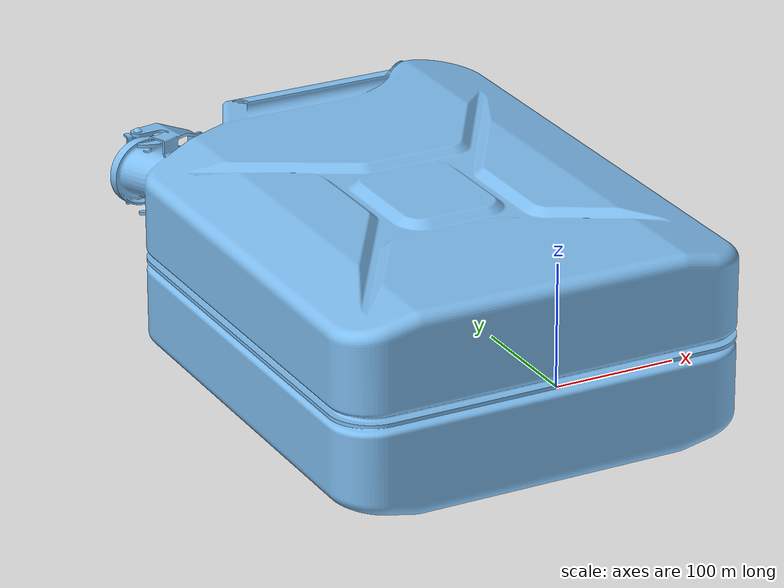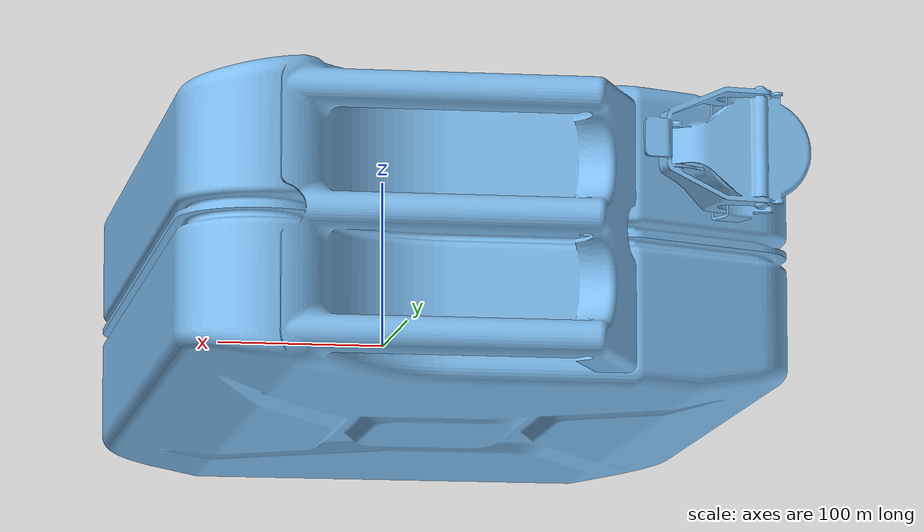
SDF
<?xml version="1.0" ?>

<sdf version="1.5">
  <model name="fuel can">
    <static>false</static>
    <link name="bowl_link">
      <collision name="collision">
        <geometry>
      	  <box>
            <size> 0.12075 0.16404 0.0577</size>
          </box>
        </geometry>
		<surface>
			<friction>
				<ode>
					<mu>0.98</mu>
					<mu2>0.98</mu2>
				</ode>
			</friction>
		</surface>
      </collision>
      <visual name="visual">
        <geometry>
          <mesh>
            <uri>model://fuel_can/meshes/fuel_can.dae</uri>
          </mesh>
        </geometry>
        <material>
		    <script>
		        <uri>file://media/materials/scripts/gazebo.material</uri>
		        <name>Gazebo/SkyBlue</name>
		    </script>
        </material>
      </visual>
	  <inertial>
		<pose>0.0 0.0 0.0 0.0 0.0 0.0</pose>
        <mass>0.1</mass>
		<inertia>
			<ixx>0.000251986763333</ixx>
			<iyy>0.000149248770833</iyy>
			<izz>0.0003457473675</izz>
			<ixy>0.0</ixy>
			<ixz>0.0</ixz>
			<iyz>0.0</iyz>
		</inertia>
	  </inertial>
	</link>

  </model>
</sdf>
